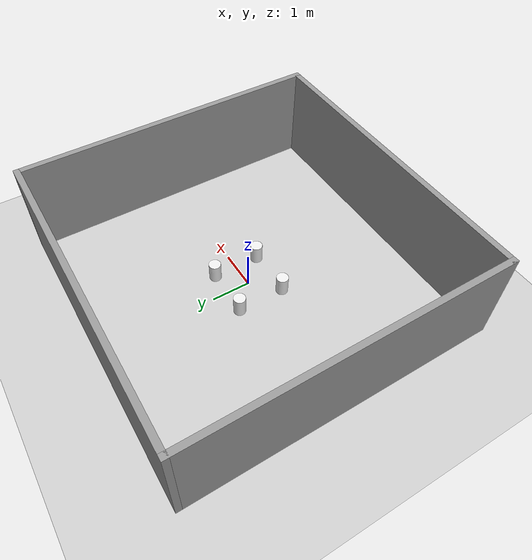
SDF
<sdf version="1.6">
 <world name="default">
  <light name="sun" type="directional">
   <pose>0 0 10 0 -0 0</pose>
   <diffuse>0.8 0.8 0.8 1</diffuse>
   <specular>0.2 0.2 0.2 1</specular>
   <attenuation>
    <range>1000</range>
    <constant>0.9</constant>
    <linear>0.01</linear>
    <quadratic>0.001</quadratic>
   </attenuation>
   <direction>-0.5 0.1 -0.9</direction>
  </light>
  <model name="ground_plane">
   <static>1</static>
   <link name="link">
    <collision name="collision">
     <geometry><plane><normal>0 0 1</normal><size>100 100</size></plane></geometry>
     <surface>
      <contact><collide_bitmask>65535</collide_bitmask></contact>
      <friction><ode><mu>100</mu><mu2>50</mu2></ode></friction>
     </surface>
    </collision>
    <visual name="visual">
     <cast_shadows>0</cast_shadows>
     <geometry><plane><normal>0 0 1</normal><size>100 100</size></plane></geometry>
     <material>
      <script><uri>file://media/materials/scripts/gazebo.material</uri><name>Gazebo/Grey</name></script>
     </material>
    </visual>
   </link>
  </model>
  <physics name="default_physics" default="0" type="ode">
   <real_time_update_rate>1000</real_time_update_rate>
   <max_step_size>0.001</max_step_size>
   <real_time_factor>1</real_time_factor>
   <ode>
    <solver>
     <type>quick</type>
     <iters>150</iters>
     <precon_iters>0</precon_iters>
     <sor>1.4</sor>
     <use_dynamic_moi_rescaling>1</use_dynamic_moi_rescaling>
    </solver>
    <constraints>
     <cfm>1e-05</cfm>
     <erp>0.2</erp>
     <contact_max_correcting_vel>2000</contact_max_correcting_vel>
     <contact_surface_layer>0.01</contact_surface_layer>
    </constraints>
   </ode>
  </physics>
  <model name="obstacle">
   <link name="obstacle">
    <collision name="obstacle_1">
     <pose>-0.6 -0.6 0.25 0 -0 0</pose>
     <geometry><cylinder><radius>0.15</radius><length>0.5</length></cylinder></geometry>
    </collision>
    <visual name="obstacle_1">
     <pose>-0.6 -0.6 0.25 0 -0 0</pose>
     <geometry><cylinder><radius>0.15</radius><length>0.5</length></cylinder></geometry>
     <material>
      <script><uri>file://media/materials/scripts/gazebo.material</uri><name>Gazebo/White</name></script>
     </material>
    </visual>
    <collision name="obstacle_2">
     <pose>-0.6 0.6 0.25 0 -0 0</pose>
     <geometry><cylinder><radius>0.15</radius><length>0.5</length></cylinder></geometry>
    </collision>
    <visual name="obstacle_2">
     <pose>-0.6 0.6 0.25 0 -0 0</pose>
     <geometry><cylinder><radius>0.15</radius><length>0.5</length></cylinder></geometry>
     <material>
      <script><uri>file://media/materials/scripts/gazebo.material</uri><name>Gazebo/White</name></script>
     </material>
    </visual>
    <collision name="obstacle_3">
     <pose>0.6 -0.6 0.25 0 -0 0</pose>
     <geometry><cylinder><radius>0.15</radius><length>0.5</length></cylinder></geometry>
    </collision>
    <visual name="obstacle_3">
     <pose>0.6 -0.6 0.25 0 -0 0</pose>
     <geometry><cylinder><radius>0.15</radius><length>0.5</length></cylinder></geometry>
     <material>
      <script><uri>file://media/materials/scripts/gazebo.material</uri><name>Gazebo/White</name></script>
     </material>
    </visual>
    <collision name="obstacle_4">
     <pose>0.6 0.6 0.25 0 -0 0</pose>
     <geometry><cylinder><radius>0.15</radius><length>0.5</length></cylinder></geometry>
    </collision>
    <visual name="obstacle_4">
     <pose>0.6 0.6 0.25 0 -0 0</pose>
     <geometry><cylinder><radius>0.15</radius><length>0.5</length></cylinder></geometry>
     <material>
      <script><uri>file://media/materials/scripts/gazebo.material</uri><name>Gazebo/White</name></script>
     </material>
    </visual>
   </link>
   <static>1</static>
  </model>
  <scene><ambient>0.4 0.4 0.4 1</ambient><background>0.7 0.7 0.7 1</background><shadows>1</shadows></scene>
  <gravity>0 0 -9.8</gravity>
  <magnetic_field>6e-06 2.3e-05 -4.2e-05</magnetic_field>
  <atmosphere type="adiabatic"/>
  <spherical_coordinates>
   <surface_model>EARTH_WGS84</surface_model>
   <latitude_deg>0</latitude_deg>
   <longitude_deg>0</longitude_deg>
   <elevation>0</elevation>
   <heading_deg>0</heading_deg>
  </spherical_coordinates>
  <model name="Untitled">
   <link name="Wall_10">
    <collision name="Wall_10_Collision">
     <geometry><box><size>8 0.15 2.5</size></box></geometry>
     <pose>0 0 1.25 0 -0 0</pose>
    </collision>
    <visual name="Wall_10_Visual">
     <pose>0 0 1.25 0 -0 0</pose>
     <geometry><box><size>8 0.15 2.5</size></box></geometry>
     <material>
      <script><uri>file://media/materials/scripts/gazebo.material</uri><name>Gazebo/Grey</name></script>
      <ambient>1 1 1 1</ambient>
     </material>
     <meta><layer>0</layer></meta>
    </visual>
    <pose>-0 -3.925 0 0 -0 0</pose>
   </link>
   <link name="Wall_11">
    <collision name="Wall_11_Collision">
     <geometry><box><size>8 0.15 2.5</size></box></geometry>
     <pose>0 0 1.25 0 -0 0</pose>
    </collision>
    <visual name="Wall_11_Visual">
     <pose>0 0 1.25 0 -0 0</pose>
     <geometry><box><size>8 0.15 2.5</size></box></geometry>
     <material>
      <script><uri>file://media/materials/scripts/gazebo.material</uri><name>Gazebo/Grey</name></script>
      <ambient>1 1 1 1</ambient>
     </material>
     <meta><layer>0</layer></meta>
    </visual>
    <pose>3.925 -0 0 0 -0 1.5708</pose>
   </link>
   <link name="Wall_12">
    <collision name="Wall_12_Collision">
     <geometry><box><size>8 0.15 2.5</size></box></geometry>
     <pose>0 0 1.25 0 -0 0</pose>
    </collision>
    <visual name="Wall_12_Visual">
     <pose>0 0 1.25 0 -0 0</pose>
     <geometry><box><size>8 0.15 2.5</size></box></geometry>
     <material>
      <script><uri>file://media/materials/scripts/gazebo.material</uri><name>Gazebo/Grey</name></script>
      <ambient>1 1 1 1</ambient>
     </material>
     <meta><layer>0</layer></meta>
    </visual>
    <pose>-0 3.925 0 0 -0 3.14159</pose>
   </link>
   <link name="Wall_9">
    <collision name="Wall_9_Collision">
     <geometry><box><size>8 0.15 2.5</size></box></geometry>
     <pose>0 0 1.25 0 -0 0</pose>
    </collision>
    <visual name="Wall_9_Visual">
     <pose>0 0 1.25 0 -0 0</pose>
     <geometry><box><size>8 0.15 2.5</size></box></geometry>
     <material>
      <script><uri>file://media/materials/scripts/gazebo.material</uri><name>Gazebo/Grey</name></script>
      <ambient>1 1 1 1</ambient>
     </material>
     <meta><layer>0</layer></meta>
    </visual>
    <pose>-3.925 -0 0 0 -0 -1.5708</pose>
   </link>
   <static>1</static>
  </model>
 </world>
</sdf>
